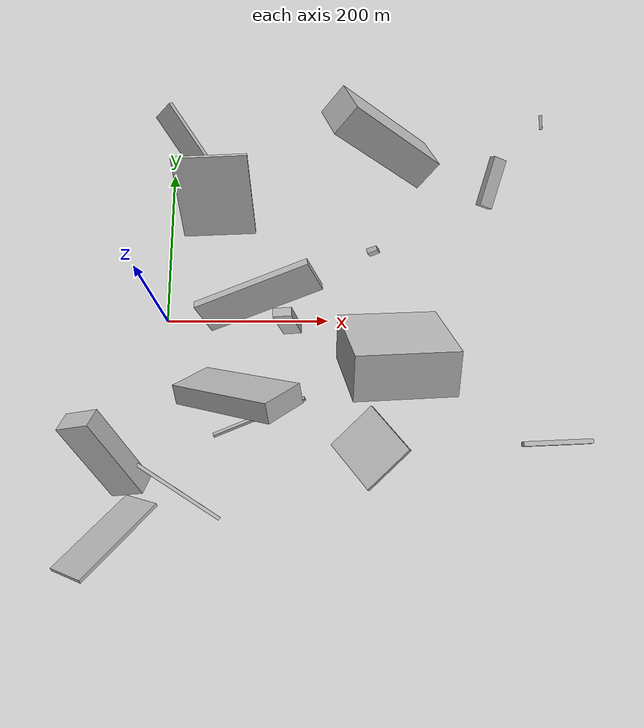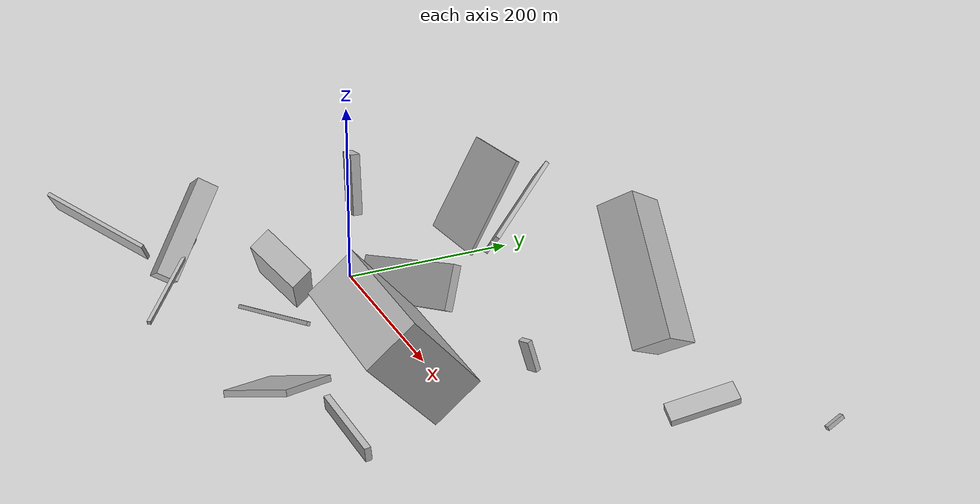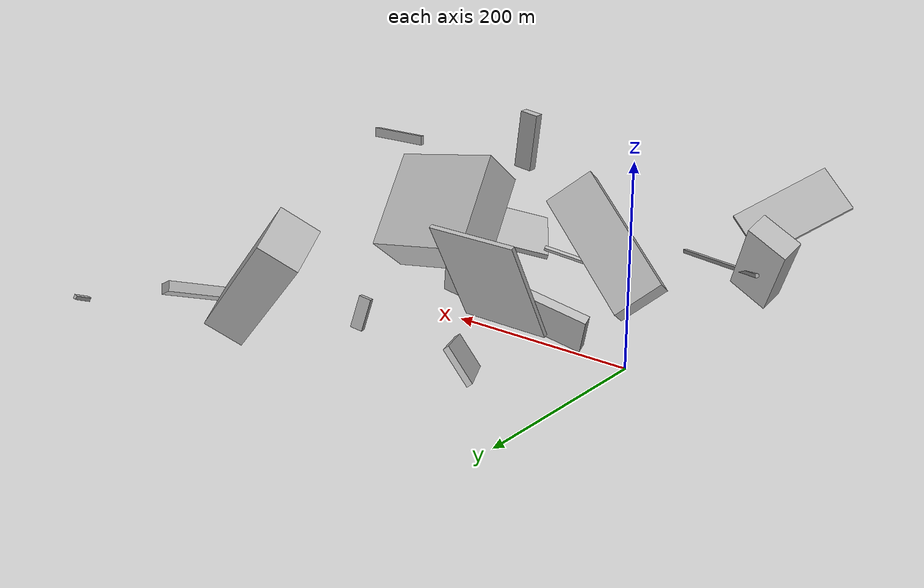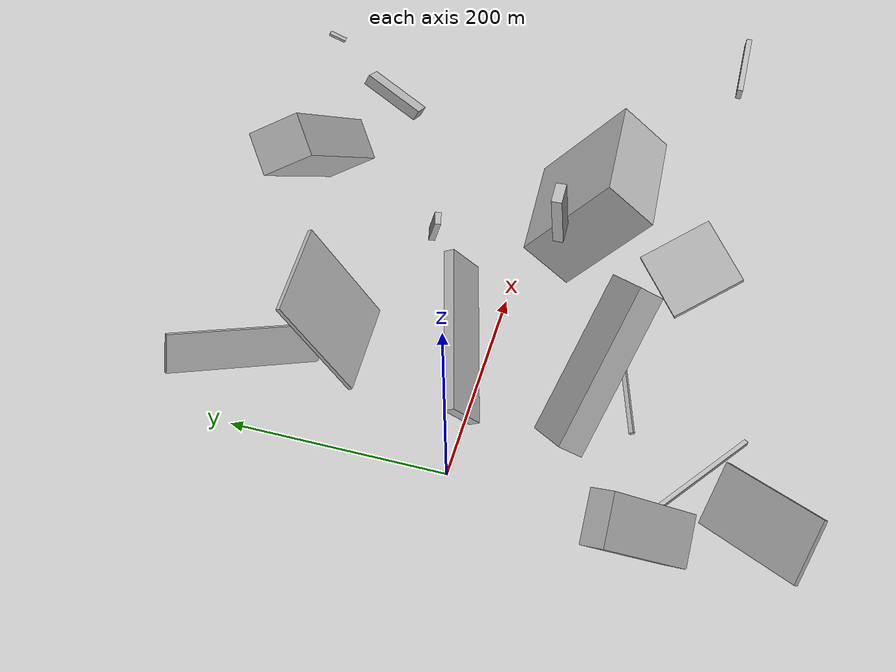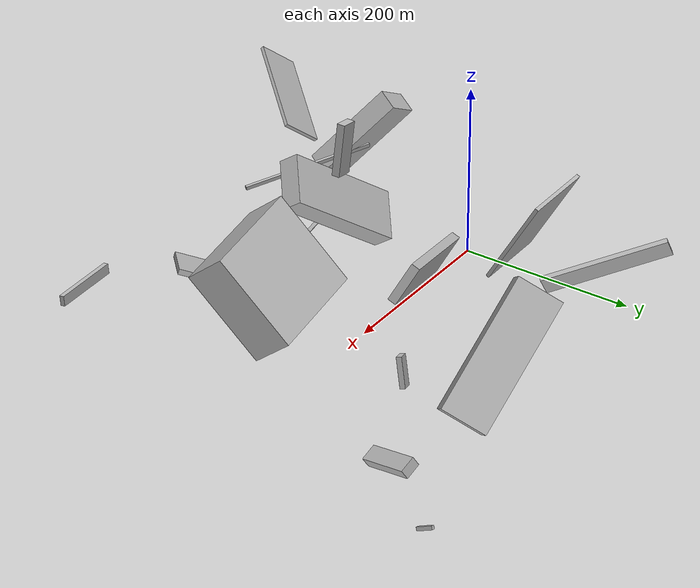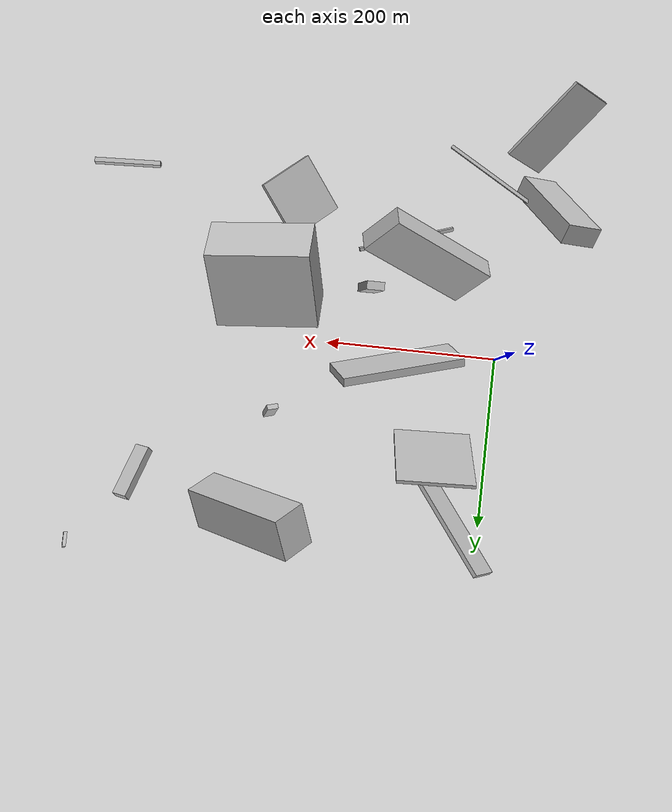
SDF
<sdf version="1.6">
 <world name="default">
  <scene>
   <sky><clouds><speed>12</speed></clouds></sky>
   <ambient>0.4 0.4 0.4 1</ambient>
   <background>0.7 0.7 0.7 1</background>
   <shadows>1</shadows>
  </scene>
  <gravity>0 0 -9.8066</gravity>
  <magnetic_field>6e-06 2.3e-05 -4.2e-05</magnetic_field>
  <physics default="0" name="default_physics" type="ode">
   <ode>
    <solver>
     <type>quick</type>
     <iters>10</iters>
     <sor>1.0</sor>
     <use_dynamic_moi_rescaling>0</use_dynamic_moi_rescaling>
    </solver>
    <constraints>
     <cfm>0</cfm>
     <erp>0.2</erp>
     <contact_max_correcting_vel>100</contact_max_correcting_vel>
     <contact_surface_layer>0.001</contact_surface_layer>
    </constraints>
   </ode>
   <max_step_size>0.004</max_step_size>
   <real_time_factor>1</real_time_factor>
   <real_time_update_rate>250</real_time_update_rate>
  </physics>
  <light name="sun" type="directional">
   <pose>0 0 10 0 0 0</pose>
   <diffuse>0.8 0.8 0.8 1</diffuse>
   <specular>0.2 0.2 0.2 1</specular>
   <attenuation>
    <range>1000</range>
    <constant>0.9</constant>
    <linear>0.01</linear>
    <quadratic>0.001</quadratic>
   </attenuation>
   <direction>-0.5 0.1 -0.9</direction>
  </light>
  <model name="building_1">
   <static>0</static>
   <pose>69.34243192586457 94.27765430692844 58.48264609244623 -0.5126543124965754 -0.02561049734455182 0.03139028898858265</pose>
   <link name="link">
    <gravity>0</gravity>
    <pose>0 0 55.5 0 0 0</pose>
    <collision name="collision"><geometry><box><size>87 4 111</size></box></geometry></collision>
    <visual name="visual">
     <cast_shadows>0</cast_shadows>
     <geometry><box><size>87 4 111</size></box></geometry>
     <material>
      <script>
       <uri>model://HANNAS_wall/materials/scripts</uri>
       <uri>model://HANNAS_wall/materials/textures</uri>
       <name>vrc/HANNAS_wall</name>
      </script>
     </material>
    </visual>
   </link>
  </model>
  <model name="building_2">
   <static>0</static>
   <pose>276.5891929259103 -85.87566592723137 68.22931934870859 0.8645248442772047 -0.13032678133477799 -3.0661524422508593</pose>
   <link name="link">
    <gravity>0</gravity>
    <pose>0 0 27.5 0 0 0</pose>
    <collision name="collision"><geometry><box><size>118 111 55</size></box></geometry></collision>
    <visual name="visual">
     <cast_shadows>0</cast_shadows>
     <geometry><box><size>118 111 55</size></box></geometry>
     <material>
      <script>
       <uri>model://HANNAS_wall/materials/scripts</uri>
       <uri>model://HANNAS_wall/materials/textures</uri>
       <name>vrc/HANNAS_wall</name>
      </script>
     </material>
    </visual>
   </link>
  </model>
  <model name="building_3">
   <static>0</static>
   <pose>116.37588799987766 14.901079517700252 46.92834695796895 2.5527440798851146 -1.0055961379173055 2.361702119258243</pose>
   <link name="link">
    <gravity>0</gravity>
    <pose>0 0 5.0 0 0 0</pose>
    <collision name="collision"><geometry><box><size>47 150 10</size></box></geometry></collision>
    <visual name="visual">
     <cast_shadows>0</cast_shadows>
     <geometry><box><size>47 150 10</size></box></geometry>
     <material>
      <script>
       <uri>model://HANNAS_wall/materials/scripts</uri>
       <uri>model://HANNAS_wall/materials/textures</uri>
       <name>vrc/HANNAS_wall</name>
      </script>
     </material>
    </visual>
   </link>
  </model>
  <model name="building_4">
   <static>0</static>
   <pose>93.65752838711497 -97.93125310781373 81.29978925269145 2.328500778044978 0.6212113573853266 0.68899552806717</pose>
   <link name="link">
    <gravity>0</gravity>
    <pose>0 0 12.0 0 0 0</pose>
    <collision name="collision"><geometry><box><size>56 150 24</size></box></geometry></collision>
    <visual name="visual">
     <cast_shadows>0</cast_shadows>
     <geometry><box><size>56 150 24</size></box></geometry>
     <material>
      <script>
       <uri>model://HANNAS_wall/materials/scripts</uri>
       <uri>model://HANNAS_wall/materials/textures</uri>
       <name>vrc/HANNAS_wall</name>
      </script>
     </material>
    </visual>
   </link>
  </model>
  <model name="building_5">
   <static>0</static>
   <pose>249.72785967765472 -164.66408331432694 41.15703278865868 0.2881687271872044 -0.3266117755851113 -0.9273895924381897</pose>
   <link name="link">
    <gravity>0</gravity>
    <pose>0 0 3.0 0 0 0</pose>
    <collision name="collision"><geometry><box><size>72 66 6</size></box></geometry></collision>
    <visual name="visual">
     <cast_shadows>0</cast_shadows>
     <geometry><box><size>72 66 6</size></box></geometry>
     <material>
      <script>
       <uri>model://HANNAS_wall/materials/scripts</uri>
       <uri>model://HANNAS_wall/materials/textures</uri>
       <name>vrc/HANNAS_wall</name>
      </script>
     </material>
    </visual>
   </link>
  </model>
  <model name="building_6">
   <static>0</static>
   <pose>-46.56024020201721 -164.67891867723418 62.4563536701931 0.9616772343609615 -0.5037364972440315 0.02604879317326511</pose>
   <link name="link">
    <gravity>0</gravity>
    <pose>0 0 12.0 0 0 0</pose>
    <collision name="collision"><geometry><box><size>45 113 24</size></box></geometry></collision>
    <visual name="visual">
     <cast_shadows>0</cast_shadows>
     <geometry><box><size>45 113 24</size></box></geometry>
     <material>
      <script>
       <uri>model://HANNAS_wall/materials/scripts</uri>
       <uri>model://HANNAS_wall/materials/textures</uri>
       <name>vrc/HANNAS_wall</name>
      </script>
     </material>
    </visual>
   </link>
  </model>
  <model name="building_7">
   <static>0</static>
   <pose>400.2329069951064 146.0252679180647 22.30070401201527 -1.216934090665924 0.4615819107083703 -0.14611806195206706</pose>
   <link name="link">
    <gravity>0</gravity>
    <pose>0 0 32.0 0 0 0</pose>
    <collision name="collision"><geometry><box><size>18 11 64</size></box></geometry></collision>
    <visual name="visual">
     <cast_shadows>0</cast_shadows>
     <geometry><box><size>18 11 64</size></box></geometry>
     <material>
      <script>
       <uri>model://HANNAS_wall/materials/scripts</uri>
       <uri>model://HANNAS_wall/materials/textures</uri>
       <name>vrc/HANNAS_wall</name>
      </script>
     </material>
    </visual>
   </link>
  </model>
  <model name="building_8">
   <static>0</static>
   <pose>440.53873158270613 -170.47907252594982 120.61101049633137 0.009734934216784398 0.08855748184216086 -1.528903574169415</pose>
   <link name="link">
    <gravity>0</gravity>
    <pose>0 0 5.5 0 0 0</pose>
    <collision name="collision"><geometry><box><size>5 73 11</size></box></geometry></collision>
    <visual name="visual">
     <cast_shadows>0</cast_shadows>
     <geometry><box><size>5 73 11</size></box></geometry>
     <material>
      <script>
       <uri>model://HANNAS_wall/materials/scripts</uri>
       <uri>model://HANNAS_wall/materials/textures</uri>
       <name>vrc/HANNAS_wall</name>
      </script>
     </material>
    </visual>
   </link>
  </model>
  <model name="building_9">
   <static>0</static>
   <pose>255.028155992809 82.80288774949574 34.917816979427435 2.902419277667644 -0.199917868745883 1.8827182287499555</pose>
   <link name="link">
    <gravity>0</gravity>
    <pose>0 0 17.0 0 0 0</pose>
    <collision name="collision"><geometry><box><size>6 13 34</size></box></geometry></collision>
    <visual name="visual">
     <cast_shadows>0</cast_shadows>
     <geometry><box><size>6 13 34</size></box></geometry>
     <material>
      <script>
       <uri>model://HANNAS_wall/materials/scripts</uri>
       <uri>model://HANNAS_wall/materials/textures</uri>
       <name>vrc/HANNAS_wall</name>
      </script>
     </material>
    </visual>
   </link>
  </model>
  <model name="building_10">
   <static>0</static>
   <pose>162.02949312497893 -55.560418520144886 156.9435327279499 -0.028746750414093768 -0.14789651345470783 0.021211692865508582</pose>
   <link name="link">
    <gravity>0</gravity>
    <pose>0 0 29.0 0 0 0</pose>
    <collision name="collision"><geometry><box><size>19 9 58</size></box></geometry></collision>
    <visual name="visual">
     <cast_shadows>0</cast_shadows>
     <geometry><box><size>19 9 58</size></box></geometry>
     <material>
      <script>
       <uri>model://HANNAS_wall/materials/scripts</uri>
       <uri>model://HANNAS_wall/materials/textures</uri>
       <name>vrc/HANNAS_wall</name>
      </script>
     </material>
    </visual>
   </link>
  </model>
  <model name="building_11">
   <static>0</static>
   <pose>259.2296079606711 229.0324165478829 75.97109568261543 0.9855709755967111 -0.5934404998365209 0.6922898343820428</pose>
   <link name="link">
    <gravity>0</gravity>
    <pose>0 0 25.5 0 0 0</pose>
    <collision name="collision"><geometry><box><size>41 150 51</size></box></geometry></collision>
    <visual name="visual">
     <cast_shadows>0</cast_shadows>
     <geometry><box><size>41 150 51</size></box></geometry>
     <material>
      <script>
       <uri>model://HANNAS_wall/materials/scripts</uri>
       <uri>model://HANNAS_wall/materials/textures</uri>
       <name>vrc/HANNAS_wall</name>
      </script>
     </material>
    </visual>
   </link>
  </model>
  <model name="building_12">
   <static>0</static>
   <pose>119.92447636104484 -129.91263780583964 41.904069390265775 -2.0770015755138984 -0.23372991094136455 0.34303939260796384</pose>
   <link name="link">
    <gravity>0</gravity>
    <pose>0 0 2.0 0 0 0</pose>
    <collision name="collision"><geometry><box><size>117 4 4</size></box></geometry></collision>
    <visual name="visual">
     <cast_shadows>0</cast_shadows>
     <geometry><box><size>117 4 4</size></box></geometry>
     <material>
      <script>
       <uri>model://HANNAS_wall/materials/scripts</uri>
       <uri>model://HANNAS_wall/materials/textures</uri>
       <name>vrc/HANNAS_wall</name>
      </script>
     </material>
    </visual>
   </link>
  </model>
  <model name="building_13">
   <static>0</static>
   <pose>-4.153945369909075 -225.74533107203268 73.85543717778513 0.9929225619075429 -0.6825085393929643 -0.2880309627647255</pose>
   <link name="link">
    <gravity>0</gravity>
    <pose>0 0 55.5 0 0 0</pose>
    <collision name="collision"><geometry><box><size>54 4 111</size></box></geometry></collision>
    <visual name="visual">
     <cast_shadows>0</cast_shadows>
     <geometry><box><size>54 4 111</size></box></geometry>
     <material>
      <script>
       <uri>model://HANNAS_wall/materials/scripts</uri>
       <uri>model://HANNAS_wall/materials/textures</uri>
       <name>vrc/HANNAS_wall</name>
      </script>
     </material>
    </visual>
   </link>
  </model>
  <model name="building_14">
   <static>0</static>
   <pose>77.11228050864133 -243.50397340509718 35.99944181569177 -1.4239243743513306 -0.001038895303344638 1.0068602062964993</pose>
   <link name="link">
    <gravity>0</gravity>
    <pose>0 0 75.0 0 0 0</pose>
    <collision name="collision"><geometry><box><size>4 4 150</size></box></geometry></collision>
    <visual name="visual">
     <cast_shadows>0</cast_shadows>
     <geometry><box><size>4 4 150</size></box></geometry>
     <material>
      <script>
       <uri>model://HANNAS_wall/materials/scripts</uri>
       <uri>model://HANNAS_wall/materials/textures</uri>
       <name>vrc/HANNAS_wall</name>
      </script>
     </material>
    </visual>
   </link>
  </model>
  <model name="building_15">
   <static>0</static>
   <pose>46.829730257960776 195.3484579424786 81.19429902987184 2.752936628129234 -0.5474329516655364 -2.3012205168649813</pose>
   <link name="link">
    <gravity>0</gravity>
    <pose>0 0 17.0 0 0 0</pose>
    <collision name="collision"><geometry><box><size>5 138 34</size></box></geometry></collision>
    <visual name="visual">
     <cast_shadows>0</cast_shadows>
     <geometry><box><size>5 138 34</size></box></geometry>
     <material>
      <script>
       <uri>model://HANNAS_wall/materials/scripts</uri>
       <uri>model://HANNAS_wall/materials/textures</uri>
       <name>vrc/HANNAS_wall</name>
      </script>
     </material>
    </visual>
   </link>
  </model>
  <model name="building_16">
   <static>0</static>
   <pose>479.8302851796316 252.90194110517155 29.530909070132292 -1.1259364687582052 -0.2734369782187583 -0.051752066417715514</pose>
   <link name="link">
    <gravity>0</gravity>
    <pose>0 0 9.0 0 0 0</pose>
    <collision name="collision"><geometry><box><size>4 4 18</size></box></geometry></collision>
    <visual name="visual">
     <cast_shadows>0</cast_shadows>
     <geometry><box><size>4 4 18</size></box></geometry>
     <material>
      <script>
       <uri>model://HANNAS_wall/materials/scripts</uri>
       <uri>model://HANNAS_wall/materials/textures</uri>
       <name>vrc/HANNAS_wall</name>
      </script>
     </material>
    </visual>
   </link>
  </model>
 </world>
</sdf>
